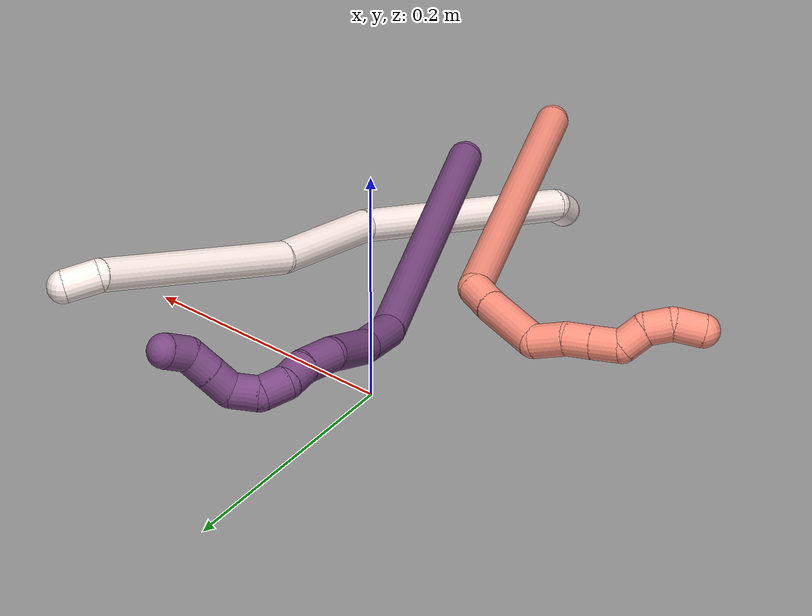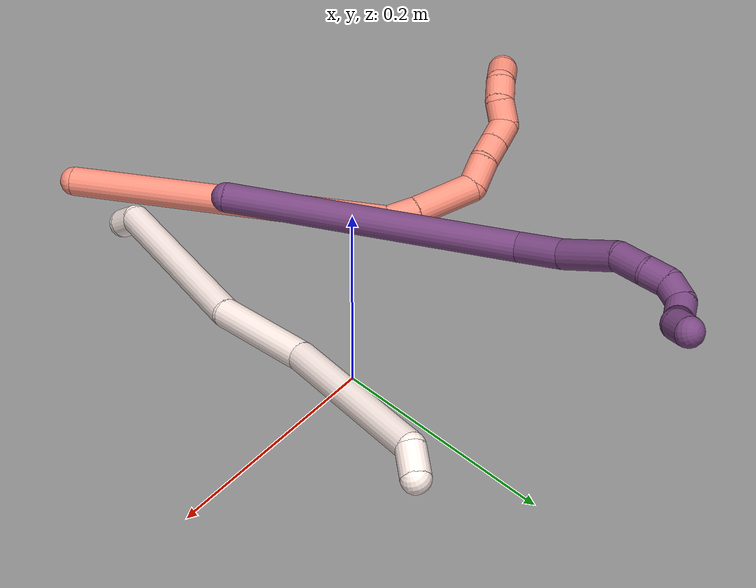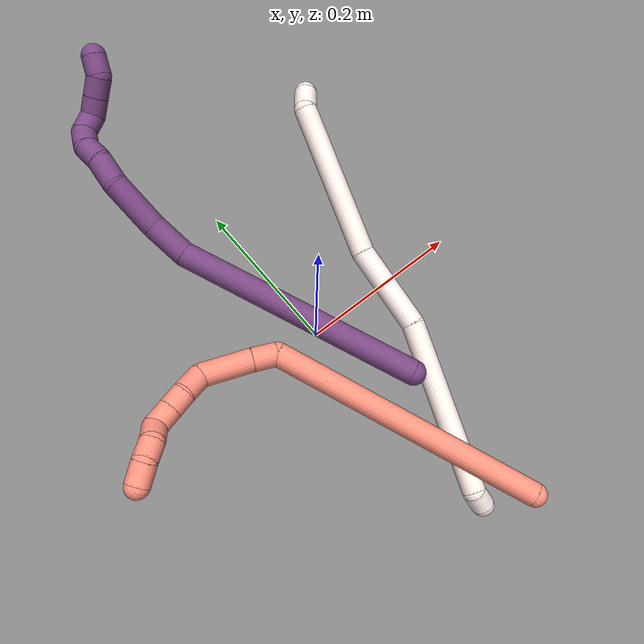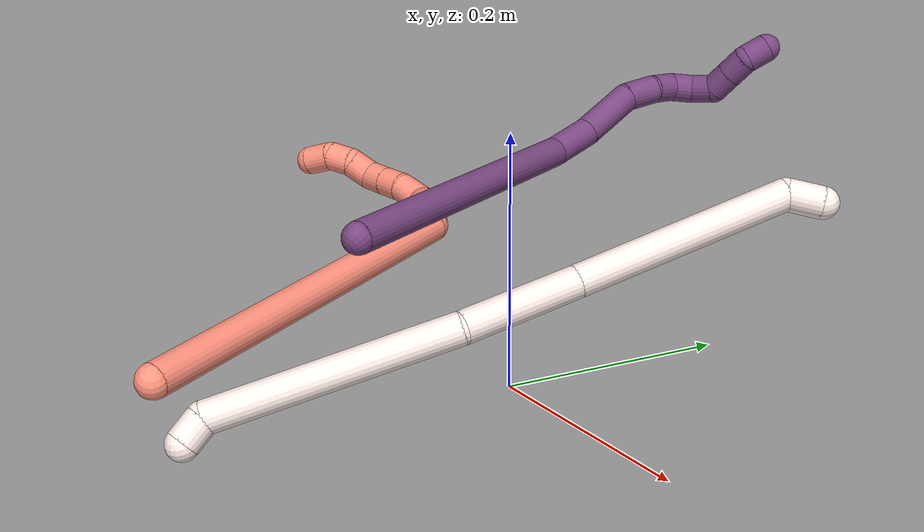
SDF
<sdf version="1.7">
 <world name="default">
  <model name="11">
   <static>0</static>
   <link name="11">
    <collision name="collision-cylinder-e_1_1_4">
     <pose>0.000781 0.009617 0.004483 -1.13458 0.073476 -0.046828</pose>
     <geometry><cylinder><radius>0.0125</radius><length>0.021279</length></cylinder></geometry>
     <surface>
      <friction><ode><mu>1.16</mu><mu2>1.16</mu2><slip1>0</slip1><slip2>0</slip2></ode></friction>
      <contact><ode><kp>1e+06</kp><kd>1</kd><max_vel>0</max_vel><min_depth>0.001</min_depth></ode></contact>
     </surface>
    </collision>
    <visual name="visual-cylinder-e_1_1_4">
     <pose>0.000781 0.009617 0.004483 -1.13458 0.073476 -0.046828</pose>
     <geometry><cylinder><radius>0.0125</radius><length>0.021279</length></cylinder></geometry>
     <material><ambient>1 0.933333 0.909804 1</ambient></material>
    </visual>
    <collision name="collision-cylinder-e_2_4_5">
     <pose>0.051368 0.09779 0.013204 -1.51691 0.564407 -0.536218</pose>
     <geometry><cylinder><radius>0.0125</radius><length>0.186221</length></cylinder></geometry>
     <surface>
      <friction><ode><mu>1.16</mu><mu2>1.16</mu2><slip1>0</slip1><slip2>0</slip2></ode></friction>
      <contact><ode><kp>1e+06</kp><kd>1</kd><max_vel>0</max_vel><min_depth>0.001</min_depth></ode></contact>
     </surface>
    </collision>
    <visual name="visual-cylinder-e_2_4_5">
     <pose>0.051368 0.09779 0.013204 -1.51691 0.564407 -0.536218</pose>
     <geometry><cylinder><radius>0.0125</radius><length>0.186221</length></cylinder></geometry>
     <material><ambient>1 0.933333 0.909804 1</ambient></material>
    </visual>
    <collision name="collision-cylinder-e_3_5_6">
     <pose>0.116234 0.220893 0.014266 -1.64195 0.325231 -0.348768</pose>
     <geometry><cylinder><radius>0.0125</radius><length>0.094262</length></cylinder></geometry>
     <surface>
      <friction><ode><mu>1.16</mu><mu2>1.16</mu2><slip1>0</slip1><slip2>0</slip2></ode></friction>
      <contact><ode><kp>1e+06</kp><kd>1</kd><max_vel>0</max_vel><min_depth>0.001</min_depth></ode></contact>
     </surface>
    </collision>
    <visual name="visual-cylinder-e_3_5_6">
     <pose>0.116234 0.220893 0.014266 -1.64195 0.325231 -0.348768</pose>
     <geometry><cylinder><radius>0.0125</radius><length>0.094262</length></cylinder></geometry>
     <material><ambient>1 0.933333 0.909804 1</ambient></material>
    </visual>
    <collision name="collision-cylinder-e_4_6_7">
     <pose>0.172653 0.339936 0.017751 -1.48164 0.505133 -0.463588</pose>
     <geometry><cylinder><radius>0.0125</radius><length>0.170934</length></cylinder></geometry>
     <surface>
      <friction><ode><mu>1.16</mu><mu2>1.16</mu2><slip1>0</slip1><slip2>0</slip2></ode></friction>
      <contact><ode><kp>1e+06</kp><kd>1</kd><max_vel>0</max_vel><min_depth>0.001</min_depth></ode></contact>
     </surface>
    </collision>
    <visual name="visual-cylinder-e_4_6_7">
     <pose>0.172653 0.339936 0.017751 -1.48164 0.505133 -0.463588</pose>
     <geometry><cylinder><radius>0.0125</radius><length>0.170934</length></cylinder></geometry>
     <material><ambient>1 0.933333 0.909804 1</ambient></material>
    </visual>
    <collision name="collision-cylinder-e_5_7_2">
     <pose>0.225286 0.420872 0.02019 -2.15093 0.971588 -1.54784</pose>
     <geometry><cylinder><radius>0.0125</radius><length>0.027303</length></cylinder></geometry>
     <surface>
      <friction><ode><mu>1.16</mu><mu2>1.16</mu2><slip1>0</slip1><slip2>0</slip2></ode></friction>
      <contact><ode><kp>1e+06</kp><kd>1</kd><max_vel>0</max_vel><min_depth>0.001</min_depth></ode></contact>
     </surface>
    </collision>
    <visual name="visual-cylinder-e_5_7_2">
     <pose>0.225286 0.420872 0.02019 -2.15093 0.971588 -1.54784</pose>
     <geometry><cylinder><radius>0.0125</radius><length>0.027303</length></cylinder></geometry>
     <material><ambient>1 0.933333 0.909804 1</ambient></material>
    </visual>
    <collision name="collision-sphere-2">
     <pose>0.23656 0.427312 0.015969 0 -0 0</pose>
     <geometry><sphere><radius>0.0125</radius></sphere></geometry>
     <surface>
      <friction><ode><mu>1.16</mu><mu2>1.16</mu2><slip1>0</slip1><slip2>0</slip2></ode></friction>
      <contact><ode><kp>1e+06</kp><kd>1</kd><max_vel>0</max_vel><min_depth>0.001</min_depth></ode></contact>
     </surface>
    </collision>
    <visual name="visual-sphere-2">
     <pose>0.23656 0.427312 0.015969 0 -0 0</pose>
     <geometry><sphere><radius>0.0125</radius></sphere></geometry>
     <material><ambient>1 0.933333 0.909804 1</ambient></material>
    </visual>
    <collision name="collision-sphere-7">
     <pose>0.214013 0.414432 0.02441 0 -0 0</pose>
     <geometry><sphere><radius>0.0125</radius></sphere></geometry>
     <surface>
      <friction><ode><mu>1.16</mu><mu2>1.16</mu2><slip1>0</slip1><slip2>0</slip2></ode></friction>
      <contact><ode><kp>1e+06</kp><kd>1</kd><max_vel>0</max_vel><min_depth>0.001</min_depth></ode></contact>
     </surface>
    </collision>
    <visual name="visual-sphere-7">
     <pose>0.214013 0.414432 0.02441 0 -0 0</pose>
     <geometry><sphere><radius>0.0125</radius></sphere></geometry>
     <material><ambient>1 0.933333 0.909804 1</ambient></material>
    </visual>
    <collision name="collision-sphere-6">
     <pose>0.131294 0.26544 0.011091 0 -0 0</pose>
     <geometry><sphere><radius>0.0125</radius></sphere></geometry>
     <surface>
      <friction><ode><mu>1.16</mu><mu2>1.16</mu2><slip1>0</slip1><slip2>0</slip2></ode></friction>
      <contact><ode><kp>1e+06</kp><kd>1</kd><max_vel>0</max_vel><min_depth>0.001</min_depth></ode></contact>
     </surface>
    </collision>
    <visual name="visual-sphere-6">
     <pose>0.131294 0.26544 0.011091 0 -0 0</pose>
     <geometry><sphere><radius>0.0125</radius></sphere></geometry>
     <material><ambient>1 0.933333 0.909804 1</ambient></material>
    </visual>
    <collision name="collision-sphere-5">
     <pose>0.101175 0.176346 0.017441 0 -0 0</pose>
     <geometry><sphere><radius>0.0125</radius></sphere></geometry>
     <surface>
      <friction><ode><mu>1.16</mu><mu2>1.16</mu2><slip1>0</slip1><slip2>0</slip2></ode></friction>
      <contact><ode><kp>1e+06</kp><kd>1</kd><max_vel>0</max_vel><min_depth>0.001</min_depth></ode></contact>
     </surface>
    </collision>
    <visual name="visual-sphere-5">
     <pose>0.101175 0.176346 0.017441 0 -0 0</pose>
     <geometry><sphere><radius>0.0125</radius></sphere></geometry>
     <material><ambient>1 0.933333 0.909804 1</ambient></material>
    </visual>
    <collision name="collision-sphere-1">
     <geometry><sphere><radius>0.0125</radius></sphere></geometry>
     <surface>
      <friction><ode><mu>1.16</mu><mu2>1.16</mu2><slip1>0</slip1><slip2>0</slip2></ode></friction>
      <contact><ode><kp>1e+06</kp><kd>1</kd><max_vel>0</max_vel><min_depth>0.001</min_depth></ode></contact>
     </surface>
    </collision>
    <visual name="visual-sphere-1">
     <geometry><sphere><radius>0.0125</radius></sphere></geometry>
     <material><ambient>1 0.933333 0.909804 1</ambient></material>
    </visual>
    <collision name="collision-sphere-4">
     <pose>0.001562 0.019235 0.008967 0 -0 0</pose>
     <geometry><sphere><radius>0.0125</radius></sphere></geometry>
     <surface>
      <friction><ode><mu>1.16</mu><mu2>1.16</mu2><slip1>0</slip1><slip2>0</slip2></ode></friction>
      <contact><ode><kp>1e+06</kp><kd>1</kd><max_vel>0</max_vel><min_depth>0.001</min_depth></ode></contact>
     </surface>
    </collision>
    <visual name="visual-sphere-4">
     <pose>0.001562 0.019235 0.008967 0 -0 0</pose>
     <geometry><sphere><radius>0.0125</radius></sphere></geometry>
     <material><ambient>1 0.933333 0.909804 1</ambient></material>
    </visual>
    <inertial>
     <pose>0.112405 0.21767 0.014969 0 -0 0</pose>
     <mass>0.5</mass>
     <inertia>
      <ixx>0.000386</ixx>
      <ixy>0</ixy>
      <ixz>0</ixz>
      <iyy>-8.8e-05</iyy>
      <iyz>0</iyz>
      <izz>-0.001422</izz>
     </inertia>
    </inertial>
   </link>
   <pose>0.011801 -0.264064 0.012473 0.345681 0.080613 0.29386</pose>
  </model>
  <model name="16">
   <static>0</static>
   <link name="16">
    <collision name="collision-cylinder-e_1_1_4">
     <pose>-0.046186 0.127957 -0.048606 -1.93382 -0.325429 0.46725</pose>
     <geometry><cylinder><radius>0.0125</radius><length>0.288921</length></cylinder></geometry>
     <surface>
      <friction><ode><mu>1.16</mu><mu2>1.16</mu2><slip1>0</slip1><slip2>0</slip2></ode></friction>
      <contact><ode><kp>1e+06</kp><kd>1</kd><max_vel>0</max_vel><min_depth>0.001</min_depth></ode></contact>
     </surface>
    </collision>
    <visual name="visual-cylinder-e_1_1_4">
     <pose>-0.046186 0.127957 -0.048606 -1.93382 -0.325429 0.46725</pose>
     <geometry><cylinder><radius>0.0125</radius><length>0.288921</length></cylinder></geometry>
     <material><ambient>1 0.576471 0.494118 1</ambient></material>
    </visual>
    <collision name="collision-cylinder-e_2_4_5">
     <pose>-0.101318 0.260332 -0.105165 -2.6346 -0.776996 2.013</pose>
     <geometry><cylinder><radius>0.0125</radius><length>0.025518</length></cylinder></geometry>
     <surface>
      <friction><ode><mu>1.16</mu><mu2>1.16</mu2><slip1>0</slip1><slip2>0</slip2></ode></friction>
      <contact><ode><kp>1e+06</kp><kd>1</kd><max_vel>0</max_vel><min_depth>0.001</min_depth></ode></contact>
     </surface>
    </collision>
    <visual name="visual-cylinder-e_2_4_5">
     <pose>-0.101318 0.260332 -0.105165 -2.6346 -0.776996 2.013</pose>
     <geometry><cylinder><radius>0.0125</radius><length>0.025518</length></cylinder></geometry>
     <material><ambient>1 0.576471 0.494118 1</ambient></material>
    </visual>
    <collision name="collision-cylinder-e_3_5_6">
     <pose>-0.130538 0.272366 -0.129284 -2.70126 -0.848329 2.22139</pose>
     <geometry><cylinder><radius>0.0125</radius><length>0.054051</length></cylinder></geometry>
     <surface>
      <friction><ode><mu>1.16</mu><mu2>1.16</mu2><slip1>0</slip1><slip2>0</slip2></ode></friction>
      <contact><ode><kp>1e+06</kp><kd>1</kd><max_vel>0</max_vel><min_depth>0.001</min_depth></ode></contact>
     </surface>
    </collision>
    <visual name="visual-cylinder-e_3_5_6">
     <pose>-0.130538 0.272366 -0.129284 -2.70126 -0.848329 2.22139</pose>
     <geometry><cylinder><radius>0.0125</radius><length>0.054051</length></cylinder></geometry>
     <material><ambient>1 0.576471 0.494118 1</ambient></material>
    </visual>
    <collision name="collision-cylinder-e_4_6_7">
     <pose>-0.163185 0.276665 -0.14805 2.23552 -1.24239 -1.94701</pose>
     <geometry><cylinder><radius>0.0125</radius><length>0.026143</length></cylinder></geometry>
     <surface>
      <friction><ode><mu>1.16</mu><mu2>1.16</mu2><slip1>0</slip1><slip2>0</slip2></ode></friction>
      <contact><ode><kp>1e+06</kp><kd>1</kd><max_vel>0</max_vel><min_depth>0.001</min_depth></ode></contact>
     </surface>
    </collision>
    <visual name="visual-cylinder-e_4_6_7">
     <pose>-0.163185 0.276665 -0.14805 2.23552 -1.24239 -1.94701</pose>
     <geometry><cylinder><radius>0.0125</radius><length>0.026143</length></cylinder></geometry>
     <material><ambient>1 0.576471 0.494118 1</ambient></material>
    </visual>
    <collision name="collision-cylinder-e_5_7_8">
     <pose>-0.184222 0.270325 -0.154828 2.51541 -1.03406 -2.10646</pose>
     <geometry><cylinder><radius>0.0125</radius><length>0.020165</length></cylinder></geometry>
     <surface>
      <friction><ode><mu>1.16</mu><mu2>1.16</mu2><slip1>0</slip1><slip2>0</slip2></ode></friction>
      <contact><ode><kp>1e+06</kp><kd>1</kd><max_vel>0</max_vel><min_depth>0.001</min_depth></ode></contact>
     </surface>
    </collision>
    <visual name="visual-cylinder-e_5_7_8">
     <pose>-0.184222 0.270325 -0.154828 2.51541 -1.03406 -2.10646</pose>
     <geometry><cylinder><radius>0.0125</radius><length>0.020165</length></cylinder></geometry>
     <material><ambient>1 0.576471 0.494118 1</ambient></material>
    </visual>
    <collision name="collision-cylinder-e_6_8_9">
     <pose>-0.202379 0.264092 -0.16339 2.50944 -1.05077 -2.11435</pose>
     <geometry><cylinder><radius>0.0125</radius><length>0.021876</length></cylinder></geometry>
     <surface>
      <friction><ode><mu>1.16</mu><mu2>1.16</mu2><slip1>0</slip1><slip2>0</slip2></ode></friction>
      <contact><ode><kp>1e+06</kp><kd>1</kd><max_vel>0</max_vel><min_depth>0.001</min_depth></ode></contact>
     </surface>
    </collision>
    <visual name="visual-cylinder-e_6_8_9">
     <pose>-0.202379 0.264092 -0.16339 2.50944 -1.05077 -2.11435</pose>
     <geometry><cylinder><radius>0.0125</radius><length>0.021876</length></cylinder></geometry>
     <material><ambient>1 0.576471 0.494118 1</ambient></material>
    </visual>
    <collision name="collision-cylinder-e_7_9_10">
     <pose>-0.219991 0.255311 -0.164466 1.03473 -0.897307 -0.534775</pose>
     <geometry><cylinder><radius>0.0125</radius><length>0.020775</length></cylinder></geometry>
     <surface>
      <friction><ode><mu>1.16</mu><mu2>1.16</mu2><slip1>0</slip1><slip2>0</slip2></ode></friction>
      <contact><ode><kp>1e+06</kp><kd>1</kd><max_vel>0</max_vel><min_depth>0.001</min_depth></ode></contact>
     </surface>
    </collision>
    <visual name="visual-cylinder-e_7_9_10">
     <pose>-0.219991 0.255311 -0.164466 1.03473 -0.897307 -0.534775</pose>
     <geometry><cylinder><radius>0.0125</radius><length>0.020775</length></cylinder></geometry>
     <material><ambient>1 0.576471 0.494118 1</ambient></material>
    </visual>
    <collision name="collision-cylinder-e_8_10_11">
     <pose>-0.23618 0.243959 -0.162581 1.81224 -0.93513 -1.14474</pose>
     <geometry><cylinder><radius>0.0125</radius><length>0.020059</length></cylinder></geometry>
     <surface>
      <friction><ode><mu>1.16</mu><mu2>1.16</mu2><slip1>0</slip1><slip2>0</slip2></ode></friction>
      <contact><ode><kp>1e+06</kp><kd>1</kd><max_vel>0</max_vel><min_depth>0.001</min_depth></ode></contact>
     </surface>
    </collision>
    <visual name="visual-cylinder-e_8_10_11">
     <pose>-0.23618 0.243959 -0.162581 1.81224 -0.93513 -1.14474</pose>
     <geometry><cylinder><radius>0.0125</radius><length>0.020059</length></cylinder></geometry>
     <material><ambient>1 0.576471 0.494118 1</ambient></material>
    </visual>
    <collision name="collision-cylinder-e_9_11_2">
     <pose>-0.250415 0.230848 -0.1699 2.2482 -0.580142 -1.11457</pose>
     <geometry><cylinder><radius>0.0125</radius><length>0.022493</length></cylinder></geometry>
     <surface>
      <friction><ode><mu>1.16</mu><mu2>1.16</mu2><slip1>0</slip1><slip2>0</slip2></ode></friction>
      <contact><ode><kp>1e+06</kp><kd>1</kd><max_vel>0</max_vel><min_depth>0.001</min_depth></ode></contact>
     </surface>
    </collision>
    <visual name="visual-cylinder-e_9_11_2">
     <pose>-0.250415 0.230848 -0.1699 2.2482 -0.580142 -1.11457</pose>
     <geometry><cylinder><radius>0.0125</radius><length>0.022493</length></cylinder></geometry>
     <material><ambient>1 0.576471 0.494118 1</ambient></material>
    </visual>
    <collision name="collision-sphere-2">
     <pose>-0.25658 0.223518 -0.175796 0 -0 0</pose>
     <geometry><sphere><radius>0.0125</radius></sphere></geometry>
     <surface>
      <friction><ode><mu>1.16</mu><mu2>1.16</mu2><slip1>0</slip1><slip2>0</slip2></ode></friction>
      <contact><ode><kp>1e+06</kp><kd>1</kd><max_vel>0</max_vel><min_depth>0.001</min_depth></ode></contact>
     </surface>
    </collision>
    <visual name="visual-sphere-2">
     <pose>-0.25658 0.223518 -0.175796 0 -0 0</pose>
     <geometry><sphere><radius>0.0125</radius></sphere></geometry>
     <material><ambient>1 0.576471 0.494118 1</ambient></material>
    </visual>
    <collision name="collision-sphere-11">
     <pose>-0.244251 0.238177 -0.164004 0 -0 0</pose>
     <geometry><sphere><radius>0.0125</radius></sphere></geometry>
     <surface>
      <friction><ode><mu>1.16</mu><mu2>1.16</mu2><slip1>0</slip1><slip2>0</slip2></ode></friction>
      <contact><ode><kp>1e+06</kp><kd>1</kd><max_vel>0</max_vel><min_depth>0.001</min_depth></ode></contact>
     </surface>
    </collision>
    <visual name="visual-sphere-11">
     <pose>-0.244251 0.238177 -0.164004 0 -0 0</pose>
     <geometry><sphere><radius>0.0125</radius></sphere></geometry>
     <material><ambient>1 0.576471 0.494118 1</ambient></material>
    </visual>
    <collision name="collision-sphere-10">
     <pose>-0.22811 0.249741 -0.161157 0 -0 0</pose>
     <geometry><sphere><radius>0.0125</radius></sphere></geometry>
     <surface>
      <friction><ode><mu>1.16</mu><mu2>1.16</mu2><slip1>0</slip1><slip2>0</slip2></ode></friction>
      <contact><ode><kp>1e+06</kp><kd>1</kd><max_vel>0</max_vel><min_depth>0.001</min_depth></ode></contact>
     </surface>
    </collision>
    <visual name="visual-sphere-10">
     <pose>-0.22811 0.249741 -0.161157 0 -0 0</pose>
     <geometry><sphere><radius>0.0125</radius></sphere></geometry>
     <material><ambient>1 0.576471 0.494118 1</ambient></material>
    </visual>
    <collision name="collision-sphere-9">
     <pose>-0.211872 0.260881 -0.167775 0 -0 0</pose>
     <geometry><sphere><radius>0.0125</radius></sphere></geometry>
     <surface>
      <friction><ode><mu>1.16</mu><mu2>1.16</mu2><slip1>0</slip1><slip2>0</slip2></ode></friction>
      <contact><ode><kp>1e+06</kp><kd>1</kd><max_vel>0</max_vel><min_depth>0.001</min_depth></ode></contact>
     </surface>
    </collision>
    <visual name="visual-sphere-9">
     <pose>-0.211872 0.260881 -0.167775 0 -0 0</pose>
     <geometry><sphere><radius>0.0125</radius></sphere></geometry>
     <material><ambient>1 0.576471 0.494118 1</ambient></material>
    </visual>
    <collision name="collision-sphere-4">
     <pose>-0.092372 0.255915 -0.097212 0 -0 0</pose>
     <geometry><sphere><radius>0.0125</radius></sphere></geometry>
     <surface>
      <friction><ode><mu>1.16</mu><mu2>1.16</mu2><slip1>0</slip1><slip2>0</slip2></ode></friction>
      <contact><ode><kp>1e+06</kp><kd>1</kd><max_vel>0</max_vel><min_depth>0.001</min_depth></ode></contact>
     </surface>
    </collision>
    <visual name="visual-sphere-4">
     <pose>-0.092372 0.255915 -0.097212 0 -0 0</pose>
     <geometry><sphere><radius>0.0125</radius></sphere></geometry>
     <material><ambient>1 0.576471 0.494118 1</ambient></material>
    </visual>
    <collision name="collision-sphere-1">
     <geometry><sphere><radius>0.0125</radius></sphere></geometry>
     <surface>
      <friction><ode><mu>1.16</mu><mu2>1.16</mu2><slip1>0</slip1><slip2>0</slip2></ode></friction>
      <contact><ode><kp>1e+06</kp><kd>1</kd><max_vel>0</max_vel><min_depth>0.001</min_depth></ode></contact>
     </surface>
    </collision>
    <visual name="visual-sphere-1">
     <geometry><sphere><radius>0.0125</radius></sphere></geometry>
     <material><ambient>1 0.576471 0.494118 1</ambient></material>
    </visual>
    <collision name="collision-sphere-8">
     <pose>-0.192887 0.267304 -0.159005 0 -0 0</pose>
     <geometry><sphere><radius>0.0125</radius></sphere></geometry>
     <surface>
      <friction><ode><mu>1.16</mu><mu2>1.16</mu2><slip1>0</slip1><slip2>0</slip2></ode></friction>
      <contact><ode><kp>1e+06</kp><kd>1</kd><max_vel>0</max_vel><min_depth>0.001</min_depth></ode></contact>
     </surface>
    </collision>
    <visual name="visual-sphere-8">
     <pose>-0.192887 0.267304 -0.159005 0 -0 0</pose>
     <geometry><sphere><radius>0.0125</radius></sphere></geometry>
     <material><ambient>1 0.576471 0.494118 1</ambient></material>
    </visual>
    <collision name="collision-sphere-5">
     <pose>-0.110264 0.26475 -0.113118 0 -0 0</pose>
     <geometry><sphere><radius>0.0125</radius></sphere></geometry>
     <surface>
      <friction><ode><mu>1.16</mu><mu2>1.16</mu2><slip1>0</slip1><slip2>0</slip2></ode></friction>
      <contact><ode><kp>1e+06</kp><kd>1</kd><max_vel>0</max_vel><min_depth>0.001</min_depth></ode></contact>
     </surface>
    </collision>
    <visual name="visual-sphere-5">
     <pose>-0.110264 0.26475 -0.113118 0 -0 0</pose>
     <geometry><sphere><radius>0.0125</radius></sphere></geometry>
     <material><ambient>1 0.576471 0.494118 1</ambient></material>
    </visual>
    <collision name="collision-sphere-6">
     <pose>-0.150812 0.279983 -0.145449 0 -0 0</pose>
     <geometry><sphere><radius>0.0125</radius></sphere></geometry>
     <surface>
      <friction><ode><mu>1.16</mu><mu2>1.16</mu2><slip1>0</slip1><slip2>0</slip2></ode></friction>
      <contact><ode><kp>1e+06</kp><kd>1</kd><max_vel>0</max_vel><min_depth>0.001</min_depth></ode></contact>
     </surface>
    </collision>
    <visual name="visual-sphere-6">
     <pose>-0.150812 0.279983 -0.145449 0 -0 0</pose>
     <geometry><sphere><radius>0.0125</radius></sphere></geometry>
     <material><ambient>1 0.576471 0.494118 1</ambient></material>
    </visual>
    <collision name="collision-sphere-7">
     <pose>-0.175558 0.273347 -0.15065 0 -0 0</pose>
     <geometry><sphere><radius>0.0125</radius></sphere></geometry>
     <surface>
      <friction><ode><mu>1.16</mu><mu2>1.16</mu2><slip1>0</slip1><slip2>0</slip2></ode></friction>
      <contact><ode><kp>1e+06</kp><kd>1</kd><max_vel>0</max_vel><min_depth>0.001</min_depth></ode></contact>
     </surface>
    </collision>
    <visual name="visual-sphere-7">
     <pose>-0.175558 0.273347 -0.15065 0 -0 0</pose>
     <geometry><sphere><radius>0.0125</radius></sphere></geometry>
     <material><ambient>1 0.576471 0.494118 1</ambient></material>
    </visual>
    <inertial>
     <pose>-0.100668 0.184371 -0.089562 0 -0 0</pose>
     <mass>0.5</mass>
     <inertia>
      <ixx>0.002551</ixx>
      <ixy>0</ixy>
      <ixz>0</ixz>
      <iyy>0.000537</iyy>
      <iyz>0</iyz>
      <izz>-0.001137</izz>
     </inertia>
    </inertial>
   </link>
   <pose>0.041807 -0.288513 0.071857 0.324754 0.623545 0.129863</pose>
  </model>
  <model name="20">
   <static>0</static>
   <link name="20">
    <collision name="collision-cylinder-e_1_1_4">
     <pose>-0.055603 0.042612 0.10535 -0.38436 -0.455039 0.090041</pose>
     <geometry><cylinder><radius>0.0125</radius><length>0.253029</length></cylinder></geometry>
     <surface>
      <friction><ode><mu>1.16</mu><mu2>1.16</mu2><slip1>0</slip1><slip2>0</slip2></ode></friction>
      <contact><ode><kp>1e+06</kp><kd>1</kd><max_vel>0</max_vel><min_depth>0.001</min_depth></ode></contact>
     </surface>
    </collision>
    <visual name="visual-cylinder-e_1_1_4">
     <pose>-0.055603 0.042612 0.10535 -0.38436 -0.455039 0.090041</pose>
     <geometry><cylinder><radius>0.0125</radius><length>0.253029</length></cylinder></geometry>
     <material><ambient>0.478431 0.278431 0.509804 1</ambient></material>
    </visual>
    <collision name="collision-cylinder-e_2_4_5">
     <pose>-0.115071 0.089946 0.230319 -0.236234 -0.18927 0.022527</pose>
     <geometry><cylinder><radius>0.0125</radius><length>0.041093</length></cylinder></geometry>
     <surface>
      <friction><ode><mu>1.16</mu><mu2>1.16</mu2><slip1>0</slip1><slip2>0</slip2></ode></friction>
      <contact><ode><kp>1e+06</kp><kd>1</kd><max_vel>0</max_vel><min_depth>0.001</min_depth></ode></contact>
     </surface>
    </collision>
    <visual name="visual-cylinder-e_2_4_5">
     <pose>-0.115071 0.089946 0.230319 -0.236234 -0.18927 0.022527</pose>
     <geometry><cylinder><radius>0.0125</radius><length>0.041093</length></cylinder></geometry>
     <material><ambient>0.478431 0.278431 0.509804 1</ambient></material>
    </visual>
    <collision name="collision-cylinder-e_3_5_6">
     <pose>-0.121198 0.096884 0.277206 -0.081055 -0.082446 0.003345</pose>
     <geometry><cylinder><radius>0.0125</radius><length>0.054903</length></cylinder></geometry>
     <surface>
      <friction><ode><mu>1.16</mu><mu2>1.16</mu2><slip1>0</slip1><slip2>0</slip2></ode></friction>
      <contact><ode><kp>1e+06</kp><kd>1</kd><max_vel>0</max_vel><min_depth>0.001</min_depth></ode></contact>
     </surface>
    </collision>
    <visual name="visual-cylinder-e_3_5_6">
     <pose>-0.121198 0.096884 0.277206 -0.081055 -0.082446 0.003345</pose>
     <geometry><cylinder><radius>0.0125</radius><length>0.054903</length></cylinder></geometry>
     <material><ambient>0.478431 0.278431 0.509804 1</ambient></material>
    </visual>
    <collision name="collision-cylinder-e_4_6_7">
     <pose>-0.122927 0.105138 0.317476 -0.43487 0.037033 -0.008182</pose>
     <geometry><cylinder><radius>0.0125</radius><length>0.02869</length></cylinder></geometry>
     <surface>
      <friction><ode><mu>1.16</mu><mu2>1.16</mu2><slip1>0</slip1><slip2>0</slip2></ode></friction>
      <contact><ode><kp>1e+06</kp><kd>1</kd><max_vel>0</max_vel><min_depth>0.001</min_depth></ode></contact>
     </surface>
    </collision>
    <visual name="visual-cylinder-e_4_6_7">
     <pose>-0.122927 0.105138 0.317476 -0.43487 0.037033 -0.008182</pose>
     <geometry><cylinder><radius>0.0125</radius><length>0.02869</length></cylinder></geometry>
     <material><ambient>0.478431 0.278431 0.509804 1</ambient></material>
    </visual>
    <collision name="collision-cylinder-e_5_7_8">
     <pose>-0.124117 0.116771 0.339383 -0.560806 -0.162216 0.046811</pose>
     <geometry><cylinder><radius>0.0125</radius><length>0.021314</length></cylinder></geometry>
     <surface>
      <friction><ode><mu>1.16</mu><mu2>1.16</mu2><slip1>0</slip1><slip2>0</slip2></ode></friction>
      <contact><ode><kp>1e+06</kp><kd>1</kd><max_vel>0</max_vel><min_depth>0.001</min_depth></ode></contact>
     </surface>
    </collision>
    <visual name="visual-cylinder-e_5_7_8">
     <pose>-0.124117 0.116771 0.339383 -0.560806 -0.162216 0.046811</pose>
     <geometry><cylinder><radius>0.0125</radius><length>0.021314</length></cylinder></geometry>
     <material><ambient>0.478431 0.278431 0.509804 1</ambient></material>
    </visual>
    <collision name="collision-cylinder-e_6_8_9">
     <pose>-0.123086 0.12945 0.35503 -0.810328 0.274378 -0.118285</pose>
     <geometry><cylinder><radius>0.0125</radius><length>0.02032</length></cylinder></geometry>
     <surface>
      <friction><ode><mu>1.16</mu><mu2>1.16</mu2><slip1>0</slip1><slip2>0</slip2></ode></friction>
      <contact><ode><kp>1e+06</kp><kd>1</kd><max_vel>0</max_vel><min_depth>0.001</min_depth></ode></contact>
     </surface>
    </collision>
    <visual name="visual-cylinder-e_6_8_9">
     <pose>-0.123086 0.12945 0.35503 -0.810328 0.274378 -0.118285</pose>
     <geometry><cylinder><radius>0.0125</radius><length>0.02032</length></cylinder></geometry>
     <material><ambient>0.478431 0.278431 0.509804 1</ambient></material>
    </visual>
    <collision name="collision-cylinder-e_7_9_10">
     <pose>-0.112121 0.141231 0.365779 -0.864174 0.926152 -0.452603</pose>
     <geometry><cylinder><radius>0.0125</radius><length>0.020547</length></cylinder></geometry>
     <surface>
      <friction><ode><mu>1.16</mu><mu2>1.16</mu2><slip1>0</slip1><slip2>0</slip2></ode></friction>
      <contact><ode><kp>1e+06</kp><kd>1</kd><max_vel>0</max_vel><min_depth>0.001</min_depth></ode></contact>
     </surface>
    </collision>
    <visual name="visual-cylinder-e_7_9_10">
     <pose>-0.112121 0.141231 0.365779 -0.864174 0.926152 -0.452603</pose>
     <geometry><cylinder><radius>0.0125</radius><length>0.020547</length></cylinder></geometry>
     <material><ambient>0.478431 0.278431 0.509804 1</ambient></material>
    </visual>
    <collision name="collision-cylinder-e_8_10_11">
     <pose>-0.096496 0.143949 0.376222 0.29823 0.833488 0.13281</pose>
     <geometry><cylinder><radius>0.0125</radius><length>0.020028</length></cylinder></geometry>
     <surface>
      <friction><ode><mu>1.16</mu><mu2>1.16</mu2><slip1>0</slip1><slip2>0</slip2></ode></friction>
      <contact><ode><kp>1e+06</kp><kd>1</kd><max_vel>0</max_vel><min_depth>0.001</min_depth></ode></contact>
     </surface>
    </collision>
    <visual name="visual-cylinder-e_8_10_11">
     <pose>-0.096496 0.143949 0.376222 0.29823 0.833488 0.13281</pose>
     <geometry><cylinder><radius>0.0125</radius><length>0.020028</length></cylinder></geometry>
     <material><ambient>0.478431 0.278431 0.509804 1</ambient></material>
    </visual>
    <collision name="collision-cylinder-e_9_11_12">
     <pose>-0.081574 0.140074 0.388999 0.290561 0.848298 0.131944</pose>
     <geometry><cylinder><radius>0.0125</radius><length>0.020018</length></cylinder></geometry>
     <surface>
      <friction><ode><mu>1.16</mu><mu2>1.16</mu2><slip1>0</slip1><slip2>0</slip2></ode></friction>
      <contact><ode><kp>1e+06</kp><kd>1</kd><max_vel>0</max_vel><min_depth>0.001</min_depth></ode></contact>
     </surface>
    </collision>
    <visual name="visual-cylinder-e_9_11_12">
     <pose>-0.081574 0.140074 0.388999 0.290561 0.848298 0.131944</pose>
     <geometry><cylinder><radius>0.0125</radius><length>0.020018</length></cylinder></geometry>
     <material><ambient>0.478431 0.278431 0.509804 1</ambient></material>
    </visual>
    <collision name="collision-cylinder-e_10_12_2">
     <pose>-0.070229 0.139914 0.404442 -0.188463 0.392574 -0.037582</pose>
     <geometry><cylinder><radius>0.0125</radius><length>0.020057</length></cylinder></geometry>
     <surface>
      <friction><ode><mu>1.16</mu><mu2>1.16</mu2><slip1>0</slip1><slip2>0</slip2></ode></friction>
      <contact><ode><kp>1e+06</kp><kd>1</kd><max_vel>0</max_vel><min_depth>0.001</min_depth></ode></contact>
     </surface>
    </collision>
    <visual name="visual-cylinder-e_10_12_2">
     <pose>-0.070229 0.139914 0.404442 -0.188463 0.392574 -0.037582</pose>
     <geometry><cylinder><radius>0.0125</radius><length>0.020057</length></cylinder></geometry>
     <material><ambient>0.478431 0.278431 0.509804 1</ambient></material>
    </visual>
    <collision name="collision-sphere-2">
     <pose>-0.066393 0.14165 0.413543 0 -0 0</pose>
     <geometry><sphere><radius>0.0125</radius></sphere></geometry>
     <surface>
      <friction><ode><mu>1.16</mu><mu2>1.16</mu2><slip1>0</slip1><slip2>0</slip2></ode></friction>
      <contact><ode><kp>1e+06</kp><kd>1</kd><max_vel>0</max_vel><min_depth>0.001</min_depth></ode></contact>
     </surface>
    </collision>
    <visual name="visual-sphere-2">
     <pose>-0.066393 0.14165 0.413543 0 -0 0</pose>
     <geometry><sphere><radius>0.0125</radius></sphere></geometry>
     <material><ambient>0.478431 0.278431 0.509804 1</ambient></material>
    </visual>
    <collision name="collision-sphere-12">
     <pose>-0.074066 0.138178 0.39534 0 -0 0</pose>
     <geometry><sphere><radius>0.0125</radius></sphere></geometry>
     <surface>
      <friction><ode><mu>1.16</mu><mu2>1.16</mu2><slip1>0</slip1><slip2>0</slip2></ode></friction>
      <contact><ode><kp>1e+06</kp><kd>1</kd><max_vel>0</max_vel><min_depth>0.001</min_depth></ode></contact>
     </surface>
    </collision>
    <visual name="visual-sphere-12">
     <pose>-0.074066 0.138178 0.39534 0 -0 0</pose>
     <geometry><sphere><radius>0.0125</radius></sphere></geometry>
     <material><ambient>0.478431 0.278431 0.509804 1</ambient></material>
    </visual>
    <collision name="collision-sphere-11">
     <pose>-0.089083 0.14197 0.382658 0 -0 0</pose>
     <geometry><sphere><radius>0.0125</radius></sphere></geometry>
     <surface>
      <friction><ode><mu>1.16</mu><mu2>1.16</mu2><slip1>0</slip1><slip2>0</slip2></ode></friction>
      <contact><ode><kp>1e+06</kp><kd>1</kd><max_vel>0</max_vel><min_depth>0.001</min_depth></ode></contact>
     </surface>
    </collision>
    <visual name="visual-sphere-11">
     <pose>-0.089083 0.14197 0.382658 0 -0 0</pose>
     <geometry><sphere><radius>0.0125</radius></sphere></geometry>
     <material><ambient>0.478431 0.278431 0.509804 1</ambient></material>
    </visual>
    <collision name="collision-sphere-10">
     <pose>-0.103909 0.145927 0.369787 0 -0 0</pose>
     <geometry><sphere><radius>0.0125</radius></sphere></geometry>
     <surface>
      <friction><ode><mu>1.16</mu><mu2>1.16</mu2><slip1>0</slip1><slip2>0</slip2></ode></friction>
      <contact><ode><kp>1e+06</kp><kd>1</kd><max_vel>0</max_vel><min_depth>0.001</min_depth></ode></contact>
     </surface>
    </collision>
    <visual name="visual-sphere-10">
     <pose>-0.103909 0.145927 0.369787 0 -0 0</pose>
     <geometry><sphere><radius>0.0125</radius></sphere></geometry>
     <material><ambient>0.478431 0.278431 0.509804 1</ambient></material>
    </visual>
    <collision name="collision-sphere-9">
     <pose>-0.120333 0.136536 0.36177 0 -0 0</pose>
     <geometry><sphere><radius>0.0125</radius></sphere></geometry>
     <surface>
      <friction><ode><mu>1.16</mu><mu2>1.16</mu2><slip1>0</slip1><slip2>0</slip2></ode></friction>
      <contact><ode><kp>1e+06</kp><kd>1</kd><max_vel>0</max_vel><min_depth>0.001</min_depth></ode></contact>
     </surface>
    </collision>
    <visual name="visual-sphere-9">
     <pose>-0.120333 0.136536 0.36177 0 -0 0</pose>
     <geometry><sphere><radius>0.0125</radius></sphere></geometry>
     <material><ambient>0.478431 0.278431 0.509804 1</ambient></material>
    </visual>
    <collision name="collision-sphere-4">
     <pose>-0.111206 0.085223 0.210699 0 -0 0</pose>
     <geometry><sphere><radius>0.0125</radius></sphere></geometry>
     <surface>
      <friction><ode><mu>1.16</mu><mu2>1.16</mu2><slip1>0</slip1><slip2>0</slip2></ode></friction>
      <contact><ode><kp>1e+06</kp><kd>1</kd><max_vel>0</max_vel><min_depth>0.001</min_depth></ode></contact>
     </surface>
    </collision>
    <visual name="visual-sphere-4">
     <pose>-0.111206 0.085223 0.210699 0 -0 0</pose>
     <geometry><sphere><radius>0.0125</radius></sphere></geometry>
     <material><ambient>0.478431 0.278431 0.509804 1</ambient></material>
    </visual>
    <collision name="collision-sphere-1">
     <geometry><sphere><radius>0.0125</radius></sphere></geometry>
     <surface>
      <friction><ode><mu>1.16</mu><mu2>1.16</mu2><slip1>0</slip1><slip2>0</slip2></ode></friction>
      <contact><ode><kp>1e+06</kp><kd>1</kd><max_vel>0</max_vel><min_depth>0.001</min_depth></ode></contact>
     </surface>
    </collision>
    <visual name="visual-sphere-1">
     <geometry><sphere><radius>0.0125</radius></sphere></geometry>
     <material><ambient>0.478431 0.278431 0.509804 1</ambient></material>
    </visual>
    <collision name="collision-sphere-8">
     <pose>-0.125839 0.122365 0.348289 0 -0 0</pose>
     <geometry><sphere><radius>0.0125</radius></sphere></geometry>
     <surface>
      <friction><ode><mu>1.16</mu><mu2>1.16</mu2><slip1>0</slip1><slip2>0</slip2></ode></friction>
      <contact><ode><kp>1e+06</kp><kd>1</kd><max_vel>0</max_vel><min_depth>0.001</min_depth></ode></contact>
     </surface>
    </collision>
    <visual name="visual-sphere-8">
     <pose>-0.125839 0.122365 0.348289 0 -0 0</pose>
     <geometry><sphere><radius>0.0125</radius></sphere></geometry>
     <material><ambient>0.478431 0.278431 0.509804 1</ambient></material>
    </visual>
    <collision name="collision-sphere-5">
     <pose>-0.118937 0.094669 0.249938 0 -0 0</pose>
     <geometry><sphere><radius>0.0125</radius></sphere></geometry>
     <surface>
      <friction><ode><mu>1.16</mu><mu2>1.16</mu2><slip1>0</slip1><slip2>0</slip2></ode></friction>
      <contact><ode><kp>1e+06</kp><kd>1</kd><max_vel>0</max_vel><min_depth>0.001</min_depth></ode></contact>
     </surface>
    </collision>
    <visual name="visual-sphere-5">
     <pose>-0.118937 0.094669 0.249938 0 -0 0</pose>
     <geometry><sphere><radius>0.0125</radius></sphere></geometry>
     <material><ambient>0.478431 0.278431 0.509804 1</ambient></material>
    </visual>
    <collision name="collision-sphere-6">
     <pose>-0.123458 0.099099 0.304475 0 -0 0</pose>
     <geometry><sphere><radius>0.0125</radius></sphere></geometry>
     <surface>
      <friction><ode><mu>1.16</mu><mu2>1.16</mu2><slip1>0</slip1><slip2>0</slip2></ode></friction>
      <contact><ode><kp>1e+06</kp><kd>1</kd><max_vel>0</max_vel><min_depth>0.001</min_depth></ode></contact>
     </surface>
    </collision>
    <visual name="visual-sphere-6">
     <pose>-0.123458 0.099099 0.304475 0 -0 0</pose>
     <geometry><sphere><radius>0.0125</radius></sphere></geometry>
     <material><ambient>0.478431 0.278431 0.509804 1</ambient></material>
    </visual>
    <collision name="collision-sphere-7">
     <pose>-0.122396 0.111178 0.330477 0 -0 0</pose>
     <geometry><sphere><radius>0.0125</radius></sphere></geometry>
     <surface>
      <friction><ode><mu>1.16</mu><mu2>1.16</mu2><slip1>0</slip1><slip2>0</slip2></ode></friction>
      <contact><ode><kp>1e+06</kp><kd>1</kd><max_vel>0</max_vel><min_depth>0.001</min_depth></ode></contact>
     </surface>
    </collision>
    <visual name="visual-sphere-7">
     <pose>-0.122396 0.111178 0.330477 0 -0 0</pose>
     <geometry><sphere><radius>0.0125</radius></sphere></geometry>
     <material><ambient>0.478431 0.278431 0.509804 1</ambient></material>
    </visual>
    <inertial>
     <pose>-0.082806 0.078657 0.211693 0 -0 0</pose>
     <mass>0.5</mass>
     <inertia>
      <ixx>0.001354</ixx>
      <ixy>0</ixy>
      <ixz>0</ixz>
      <iyy>0.00143</iyy>
      <iyz>0</iyz>
      <izz>0.000164</izz>
     </inertia>
    </inertial>
   </link>
   <pose>0.011553 -0.131313 0.138792 -0.943118 -0.256042 -0.085594</pose>
  </model>
 </world>
</sdf>
